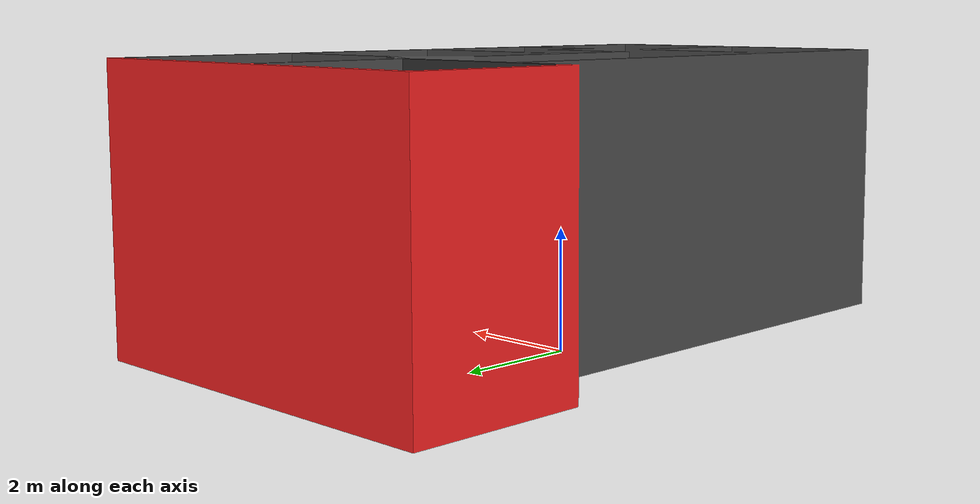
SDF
<?xml version='1.0'?>
<sdf version='1.4'>

  <model name='Office'>
    <link name='link'>
      <collision name='collision'>
<pose>-5 -10 0 0 0 0</pose>
        <geometry>
          <mesh>
            <uri>model://office/office.dae</uri>
<scale>0.3048 0.3048 0.3048</scale>
          </mesh>

        </geometry>
        <pose>0 0 1.25 0 -0 0</pose>
      </collision>
      <visual name='visual'>
<pose>-5 -10 0 0 0 0</pose>
        <geometry>
          <mesh>
            <uri>model://office/office.dae</uri>
<scale>0.3048 0.3048 0.3048</scale>
          </mesh>
        </geometry>
      </visual>
    </link>
    <static>1</static>
  </model>
</sdf>
